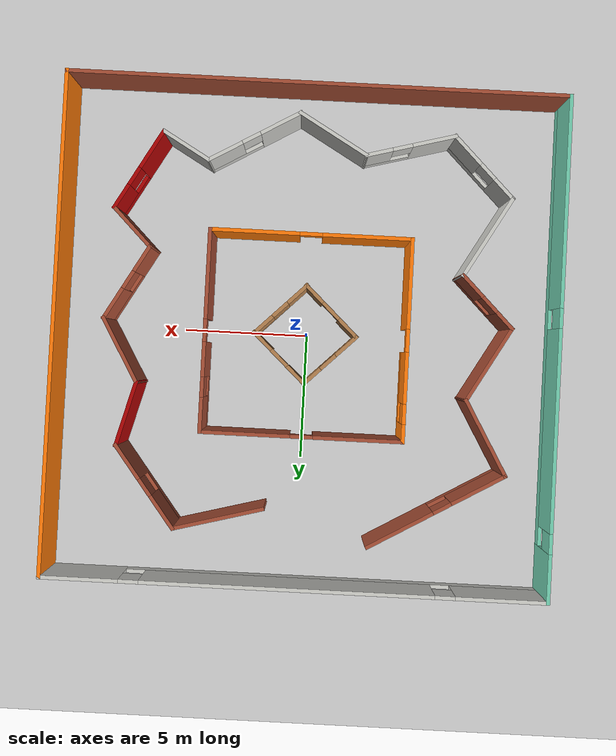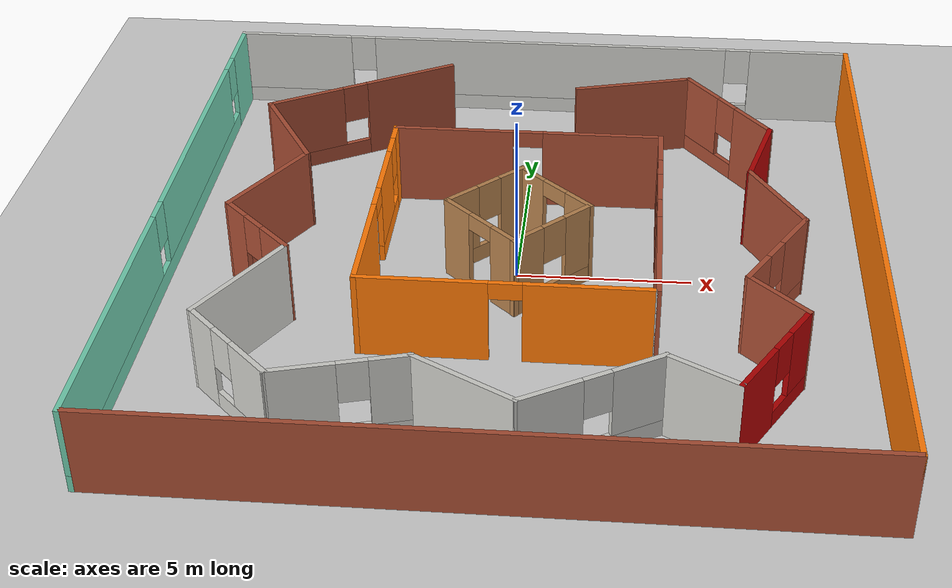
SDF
<sdf version="1.6">
 <world name="default">
  <model name="ground_plane">
   <static>1</static>
   <link name="link">
    <collision name="collision">
     <geometry><plane><normal>0 0 1</normal><size>100 100</size></plane></geometry>
     <surface><friction><ode><mu>100</mu><mu2>50</mu2></ode></friction></surface>
    </collision>
    <visual name="visual">
     <cast_shadows>0</cast_shadows>
     <geometry><plane><normal>0 0 1</normal><size>100 100</size></plane></geometry>
     <material>
      <script><uri>file://media/materials/scripts/gazebo.material</uri><name>Gazebo/Grey</name></script>
     </material>
    </visual>
   </link>
  </model>
  <model name="building">
   <link name="Wall_44">
    <collision name="Wall_44_Collision">
     <geometry><box><size>20.15 0.15 2.5</size></box></geometry>
     <pose>0 0 1.25 0 -0 0</pose>
    </collision>
    <visual name="Wall_44_Visual">
     <pose>0 0 1.25 0 -0 0</pose>
     <geometry><box><size>20.15 0.15 2.5</size></box></geometry>
     <material>
      <script><uri>file://media/materials/scripts/gazebo.material</uri><name>Gazebo/Bricks</name></script>
      <ambient>0.760784 0.662745 0.627451 1</ambient>
     </material>
     <meta><layer>0</layer></meta>
    </visual>
    <pose>0 -10 0 0 -0 0</pose>
   </link>
   <link name="Wall_45">
    <collision name="Wall_45_Collision">
     <geometry><box><size>20.15 0.15 2.5</size></box></geometry>
     <pose>0 0 1.25 0 -0 0</pose>
    </collision>
    <visual name="Wall_45_Visual">
     <pose>0 0 1.25 0 -0 0</pose>
     <geometry><box><size>20.15 0.15 2.5</size></box></geometry>
     <material>
      <script><uri>file://media/materials/scripts/gazebo.material</uri><name>Gazebo/Grey</name></script>
      <ambient>0.996078 0.47451 0.0196078 1</ambient>
     </material>
     <meta><layer>0</layer></meta>
    </visual>
    <pose>10 0 0 0 -0 1.5708</pose>
   </link>
   <link name="Wall_46">
    <pose>0 10 0 0 -0 3.14159</pose>
    <visual name="Wall_46_Visual_0">
     <pose>-8.48027 0 1.25 0 -0 0</pose>
     <geometry><box><size>3.18945 0.15 2.5</size></box></geometry>
     <material>
      <script><uri>file://media/materials/scripts/gazebo.material</uri><name>Gazebo/CeilingTiled</name></script>
      <ambient>0.333333 0 1 1</ambient>
     </material>
     <meta><layer>0</layer></meta>
    </visual>
    <collision name="Wall_46_Collision_0">
     <geometry><box><size>3.18945 0.15 2.5</size></box></geometry>
     <pose>-8.48027 0 1.25 0 -0 0</pose>
    </collision>
    <visual name="Wall_46_Visual_1">
     <pose>1.59473 0 0.25 0 -0 0</pose>
     <geometry><box><size>16.9605 0.15 0.5</size></box></geometry>
     <material>
      <script><uri>file://media/materials/scripts/gazebo.material</uri><name>Gazebo/CeilingTiled</name></script>
      <ambient>0.333333 0 1 1</ambient>
     </material>
     <meta><layer>0</layer></meta>
    </visual>
    <collision name="Wall_46_Collision_1">
     <geometry><box><size>16.9605 0.15 0.5</size></box></geometry>
     <pose>1.59473 0 0.25 0 -0 0</pose>
    </collision>
    <visual name="Wall_46_Visual_2">
     <pose>-0.261101 0 1.5 0 -0 0</pose>
     <geometry><box><size>11.6489 0.15 2</size></box></geometry>
     <material>
      <script><uri>file://media/materials/scripts/gazebo.material</uri><name>Gazebo/CeilingTiled</name></script>
      <ambient>0.333333 0 1 1</ambient>
     </material>
     <meta><layer>0</layer></meta>
    </visual>
    <collision name="Wall_46_Collision_2">
     <geometry><box><size>11.6489 0.15 2</size></box></geometry>
     <pose>-0.261101 0 1.5 0 -0 0</pose>
    </collision>
    <visual name="Wall_46_Visual_3">
     <pose>8.21917 0 1.5 0 -0 0</pose>
     <geometry><box><size>3.71165 0.15 2</size></box></geometry>
     <material>
      <script><uri>file://media/materials/scripts/gazebo.material</uri><name>Gazebo/CeilingTiled</name></script>
      <ambient>0.333333 0 1 1</ambient>
     </material>
     <meta><layer>0</layer></meta>
    </visual>
    <collision name="Wall_46_Collision_3">
     <geometry><box><size>3.71165 0.15 2</size></box></geometry>
     <pose>8.21917 0 1.5 0 -0 0</pose>
    </collision>
    <visual name="Wall_46_Visual_4">
     <pose>-6.48555 0 1.9 0 -0 0</pose>
     <geometry><box><size>0.8 0.15 1.2</size></box></geometry>
     <material>
      <script><uri>file://media/materials/scripts/gazebo.material</uri><name>Gazebo/CeilingTiled</name></script>
      <ambient>0.333333 0 1 1</ambient>
     </material>
     <meta><layer>0</layer></meta>
    </visual>
    <collision name="Wall_46_Collision_4">
     <geometry><box><size>0.8 0.15 1.2</size></box></geometry>
     <pose>-6.48555 0 1.9 0 -0 0</pose>
    </collision>
    <visual name="Wall_46_Visual_5">
     <pose>5.96335 0 1.9 0 -0 0</pose>
     <geometry><box><size>0.8 0.15 1.2</size></box></geometry>
     <material>
      <script><uri>file://media/materials/scripts/gazebo.material</uri><name>Gazebo/CeilingTiled</name></script>
      <ambient>0.333333 0 1 1</ambient>
     </material>
     <meta><layer>0</layer></meta>
    </visual>
    <collision name="Wall_46_Collision_5">
     <geometry><box><size>0.8 0.15 1.2</size></box></geometry>
     <pose>5.96335 0 1.9 0 -0 0</pose>
    </collision>
   </link>
   <link name="Wall_47">
    <pose>-10 0 0 0 0 -1.5708</pose>
    <visual name="Wall_47_Visual_0">
     <pose>-9.08483 0 1.25 0 -0 0</pose>
     <geometry><box><size>1.98033 0.15 2.5</size></box></geometry>
     <material>
      <script><uri>file://media/materials/scripts/gazebo.material</uri><name>Gazebo/Grey</name></script>
      <ambient>0.435294 0.796078 0.67451 1</ambient>
     </material>
     <meta><layer>0</layer></meta>
    </visual>
    <collision name="Wall_47_Collision_0">
     <geometry><box><size>1.98033 0.15 2.5</size></box></geometry>
     <pose>-9.08483 0 1.25 0 -0 0</pose>
    </collision>
    <visual name="Wall_47_Visual_1">
     <pose>0.990168 0 0.25 0 -0 0</pose>
     <geometry><box><size>18.1697 0.15 0.5</size></box></geometry>
     <material>
      <script><uri>file://media/materials/scripts/gazebo.material</uri><name>Gazebo/Grey</name></script>
      <ambient>0.435294 0.796078 0.67451 1</ambient>
     </material>
     <meta><layer>0</layer></meta>
    </visual>
    <collision name="Wall_47_Collision_1">
     <geometry><box><size>18.1697 0.15 0.5</size></box></geometry>
     <pose>0.990168 0 0.25 0 -0 0</pose>
    </collision>
    <visual name="Wall_47_Visual_2">
     <pose>-3.25243 0 1.5 0 -0 0</pose>
     <geometry><box><size>8.08447 0.15 2</size></box></geometry>
     <material>
      <script><uri>file://media/materials/scripts/gazebo.material</uri><name>Gazebo/Grey</name></script>
      <ambient>0.435294 0.796078 0.67451 1</ambient>
     </material>
     <meta><layer>0</layer></meta>
    </visual>
    <collision name="Wall_47_Collision_2">
     <geometry><box><size>8.08447 0.15 2</size></box></geometry>
     <pose>-3.25243 0 1.5 0 -0 0</pose>
    </collision>
    <visual name="Wall_47_Visual_3">
     <pose>5.8324 0 1.5 0 -0 0</pose>
     <geometry><box><size>8.4852 0.15 2</size></box></geometry>
     <material>
      <script><uri>file://media/materials/scripts/gazebo.material</uri><name>Gazebo/Grey</name></script>
      <ambient>0.435294 0.796078 0.67451 1</ambient>
     </material>
     <meta><layer>0</layer></meta>
    </visual>
    <collision name="Wall_47_Collision_3">
     <geometry><box><size>8.4852 0.15 2</size></box></geometry>
     <pose>5.8324 0 1.5 0 -0 0</pose>
    </collision>
    <visual name="Wall_47_Visual_4">
     <pose>-7.69466 0 1.9 0 -0 0</pose>
     <geometry><box><size>0.8 0.15 1.2</size></box></geometry>
     <material>
      <script><uri>file://media/materials/scripts/gazebo.material</uri><name>Gazebo/Grey</name></script>
      <ambient>0.435294 0.796078 0.67451 1</ambient>
     </material>
     <meta><layer>0</layer></meta>
    </visual>
    <collision name="Wall_47_Collision_4">
     <geometry><box><size>0.8 0.15 1.2</size></box></geometry>
     <pose>-7.69466 0 1.9 0 -0 0</pose>
    </collision>
    <visual name="Wall_47_Visual_5">
     <pose>1.1898 0 1.9 0 -0 0</pose>
     <geometry><box><size>0.8 0.15 1.2</size></box></geometry>
     <material>
      <script><uri>file://media/materials/scripts/gazebo.material</uri><name>Gazebo/Grey</name></script>
      <ambient>0.435294 0.796078 0.67451 1</ambient>
     </material>
     <meta><layer>0</layer></meta>
    </visual>
    <collision name="Wall_47_Collision_5">
     <geometry><box><size>0.8 0.15 1.2</size></box></geometry>
     <pose>1.1898 0 1.9 0 -0 0</pose>
    </collision>
   </link>
   <link name="Wall_49">
    <pose>-4 0 0 0 0 -1.5708</pose>
    <visual name="Wall_49_Visual_0">
     <pose>-3.69081 0 1.25 0 -0 0</pose>
     <geometry><box><size>0.768371 0.15 2.5</size></box></geometry>
     <material>
      <script><uri>file://media/materials/scripts/gazebo.material</uri><name>Gazebo/Grey</name></script>
      <ambient>0.996078 0.47451 0.0196078 1</ambient>
     </material>
     <meta><layer>0</layer></meta>
    </visual>
    <collision name="Wall_49_Collision_0">
     <geometry><box><size>0.768371 0.15 2.5</size></box></geometry>
     <pose>-3.69081 0 1.25 0 -0 0</pose>
    </collision>
    <visual name="Wall_49_Visual_1">
     <pose>2.2625 0 1.25 0 -0 0</pose>
     <geometry><box><size>3.625 0.15 2.5</size></box></geometry>
     <material>
      <script><uri>file://media/materials/scripts/gazebo.material</uri><name>Gazebo/Grey</name></script>
      <ambient>0.996078 0.47451 0.0196078 1</ambient>
     </material>
     <meta><layer>0</layer></meta>
    </visual>
    <collision name="Wall_49_Collision_1">
     <geometry><box><size>3.625 0.15 2.5</size></box></geometry>
     <pose>2.2625 0 1.25 0 -0 0</pose>
    </collision>
    <visual name="Wall_49_Visual_2">
     <pose>-1.87831 0 0.25 0 -0 0</pose>
     <geometry><box><size>2.85663 0.15 0.5</size></box></geometry>
     <material>
      <script><uri>file://media/materials/scripts/gazebo.material</uri><name>Gazebo/Grey</name></script>
      <ambient>0.996078 0.47451 0.0196078 1</ambient>
     </material>
     <meta><layer>0</layer></meta>
    </visual>
    <collision name="Wall_49_Collision_2">
     <geometry><box><size>2.85663 0.15 0.5</size></box></geometry>
     <pose>-1.87831 0 0.25 0 -0 0</pose>
    </collision>
    <visual name="Wall_49_Visual_3">
     <pose>-1.47831 0 1.5 0 -0 0</pose>
     <geometry><box><size>2.05663 0.15 2</size></box></geometry>
     <material>
      <script><uri>file://media/materials/scripts/gazebo.material</uri><name>Gazebo/Grey</name></script>
      <ambient>0.996078 0.47451 0.0196078 1</ambient>
     </material>
     <meta><layer>0</layer></meta>
    </visual>
    <collision name="Wall_49_Collision_3">
     <geometry><box><size>2.05663 0.15 2</size></box></geometry>
     <pose>-1.47831 0 1.5 0 -0 0</pose>
    </collision>
    <visual name="Wall_49_Visual_4">
     <pose>-2.90663 0 1.9 0 -0 0</pose>
     <geometry><box><size>0.8 0.15 1.2</size></box></geometry>
     <material>
      <script><uri>file://media/materials/scripts/gazebo.material</uri><name>Gazebo/Grey</name></script>
      <ambient>0.996078 0.47451 0.0196078 1</ambient>
     </material>
     <meta><layer>0</layer></meta>
    </visual>
    <collision name="Wall_49_Collision_4">
     <geometry><box><size>0.8 0.15 1.2</size></box></geometry>
     <pose>-2.90663 0 1.9 0 -0 0</pose>
    </collision>
    <visual name="Wall_49_Visual_5">
     <pose>0 0 2.25 0 -0 0</pose>
     <geometry><box><size>0.9 0.15 0.5</size></box></geometry>
     <material>
      <script><uri>file://media/materials/scripts/gazebo.material</uri><name>Gazebo/Grey</name></script>
      <ambient>0.996078 0.47451 0.0196078 1</ambient>
     </material>
     <meta><layer>0</layer></meta>
    </visual>
    <collision name="Wall_49_Collision_5">
     <geometry><box><size>0.9 0.15 0.5</size></box></geometry>
     <pose>0 0 2.25 0 -0 0</pose>
    </collision>
   </link>
   <link name="Wall_50">
    <pose>0 -4 0 0 -0 0</pose>
    <visual name="Wall_50_Visual_0">
     <pose>-2.2625 0 1.25 0 -0 0</pose>
     <geometry><box><size>3.625 0.15 2.5</size></box></geometry>
     <material>
      <script><uri>file://media/materials/scripts/gazebo.material</uri><name>Gazebo/Grey</name></script>
      <ambient>0.996078 0.47451 0.0196078 1</ambient>
     </material>
     <meta><layer>0</layer></meta>
    </visual>
    <collision name="Wall_50_Collision_0">
     <geometry><box><size>3.625 0.15 2.5</size></box></geometry>
     <pose>-2.2625 0 1.25 0 -0 0</pose>
    </collision>
    <visual name="Wall_50_Visual_1">
     <pose>2.2625 0 1.25 0 -0 0</pose>
     <geometry><box><size>3.625 0.15 2.5</size></box></geometry>
     <material>
      <script><uri>file://media/materials/scripts/gazebo.material</uri><name>Gazebo/Grey</name></script>
      <ambient>0.996078 0.47451 0.0196078 1</ambient>
     </material>
     <meta><layer>0</layer></meta>
    </visual>
    <collision name="Wall_50_Collision_1">
     <geometry><box><size>3.625 0.15 2.5</size></box></geometry>
     <pose>2.2625 0 1.25 0 -0 0</pose>
    </collision>
    <visual name="Wall_50_Visual_2">
     <pose>0 0 2.25 0 -0 0</pose>
     <geometry><box><size>0.9 0.15 0.5</size></box></geometry>
     <material>
      <script><uri>file://media/materials/scripts/gazebo.material</uri><name>Gazebo/Grey</name></script>
      <ambient>0.996078 0.47451 0.0196078 1</ambient>
     </material>
     <meta><layer>0</layer></meta>
    </visual>
    <collision name="Wall_50_Collision_2">
     <geometry><box><size>0.9 0.15 0.5</size></box></geometry>
     <pose>0 0 2.25 0 -0 0</pose>
    </collision>
   </link>
   <link name="Wall_51">
    <collision name="Wall_51_Collision">
     <geometry><box><size>0.15 0.15 2.5</size></box></geometry>
     <pose>0 0 1.25 0 -0 0</pose>
    </collision>
    <visual name="Wall_51_Visual">
     <pose>0 0 1.25 0 -0 0</pose>
     <geometry><box><size>0.15 0.15 2.5</size></box></geometry>
     <material>
      <script><uri>file://media/materials/scripts/gazebo.material</uri><name>Gazebo/CeilingTiled</name></script>
      <ambient>0.435294 0.796078 0.67451 1</ambient>
     </material>
     <meta><layer>0</layer></meta>
    </visual>
    <pose>4 -4 0 0 -0 0</pose>
   </link>
   <link name="Wall_52">
    <pose>4 0 0 0 -0 1.5708</pose>
    <visual name="Wall_52_Visual_0">
     <pose>-2.2608 0 1.25 0 -0 0</pose>
     <geometry><box><size>3.6284 0.15 2.5</size></box></geometry>
     <material>
      <script><uri>file://media/materials/scripts/gazebo.material</uri><name>Gazebo/Bricks</name></script>
      <ambient>1 1 1 1</ambient>
     </material>
     <meta><layer>0</layer></meta>
    </visual>
    <collision name="Wall_52_Collision_0">
     <geometry><box><size>3.6284 0.15 2.5</size></box></geometry>
     <pose>-2.2608 0 1.25 0 -0 0</pose>
    </collision>
    <visual name="Wall_52_Visual_1">
     <pose>1.14751 0 1.25 0 -0 0</pose>
     <geometry><box><size>1.38822 0.15 2.5</size></box></geometry>
     <material>
      <script><uri>file://media/materials/scripts/gazebo.material</uri><name>Gazebo/Bricks</name></script>
      <ambient>1 1 1 1</ambient>
     </material>
     <meta><layer>0</layer></meta>
    </visual>
    <collision name="Wall_52_Collision_1">
     <geometry><box><size>1.38822 0.15 2.5</size></box></geometry>
     <pose>1.14751 0 1.25 0 -0 0</pose>
    </collision>
    <visual name="Wall_52_Visual_2">
     <pose>2.95831 0 0.25 0 -0 0</pose>
     <geometry><box><size>2.23338 0.15 0.5</size></box></geometry>
     <material>
      <script><uri>file://media/materials/scripts/gazebo.material</uri><name>Gazebo/Bricks</name></script>
      <ambient>1 1 1 1</ambient>
     </material>
     <meta><layer>0</layer></meta>
    </visual>
    <collision name="Wall_52_Collision_2">
     <geometry><box><size>2.23338 0.15 0.5</size></box></geometry>
     <pose>2.95831 0 0.25 0 -0 0</pose>
    </collision>
    <visual name="Wall_52_Visual_3">
     <pose>3.35831 0 1.5 0 -0 0</pose>
     <geometry><box><size>1.43338 0.15 2</size></box></geometry>
     <material>
      <script><uri>file://media/materials/scripts/gazebo.material</uri><name>Gazebo/Bricks</name></script>
      <ambient>1 1 1 1</ambient>
     </material>
     <meta><layer>0</layer></meta>
    </visual>
    <collision name="Wall_52_Collision_3">
     <geometry><box><size>1.43338 0.15 2</size></box></geometry>
     <pose>3.35831 0 1.5 0 -0 0</pose>
    </collision>
    <visual name="Wall_52_Visual_4">
     <pose>2.24162 0 1.9 0 -0 0</pose>
     <geometry><box><size>0.8 0.15 1.2</size></box></geometry>
     <material>
      <script><uri>file://media/materials/scripts/gazebo.material</uri><name>Gazebo/Bricks</name></script>
      <ambient>1 1 1 1</ambient>
     </material>
     <meta><layer>0</layer></meta>
    </visual>
    <collision name="Wall_52_Collision_4">
     <geometry><box><size>0.8 0.15 1.2</size></box></geometry>
     <pose>2.24162 0 1.9 0 -0 0</pose>
    </collision>
    <visual name="Wall_52_Visual_5">
     <pose>0.003404 0 2.25 0 -0 0</pose>
     <geometry><box><size>0.9 0.15 0.5</size></box></geometry>
     <material>
      <script><uri>file://media/materials/scripts/gazebo.material</uri><name>Gazebo/Bricks</name></script>
      <ambient>1 1 1 1</ambient>
     </material>
     <meta><layer>0</layer></meta>
    </visual>
    <collision name="Wall_52_Collision_5">
     <geometry><box><size>0.9 0.15 0.5</size></box></geometry>
     <pose>0.003404 0 2.25 0 -0 0</pose>
    </collision>
   </link>
   <link name="Wall_54">
    <pose>0 4 0 0 -0 3.14159</pose>
    <visual name="Wall_54_Visual_0">
     <pose>-2.2625 0 1.25 0 -0 0</pose>
     <geometry><box><size>3.625 0.15 2.5</size></box></geometry>
     <material>
      <script><uri>file://media/materials/scripts/gazebo.material</uri><name>Gazebo/Bricks</name></script>
      <ambient>1 1 1 1</ambient>
     </material>
     <meta><layer>0</layer></meta>
    </visual>
    <collision name="Wall_54_Collision_0">
     <geometry><box><size>3.625 0.15 2.5</size></box></geometry>
     <pose>-2.2625 0 1.25 0 -0 0</pose>
    </collision>
    <visual name="Wall_54_Visual_1">
     <pose>2.2625 0 1.25 0 -0 0</pose>
     <geometry><box><size>3.625 0.15 2.5</size></box></geometry>
     <material>
      <script><uri>file://media/materials/scripts/gazebo.material</uri><name>Gazebo/Bricks</name></script>
      <ambient>1 1 1 1</ambient>
     </material>
     <meta><layer>0</layer></meta>
    </visual>
    <collision name="Wall_54_Collision_1">
     <geometry><box><size>3.625 0.15 2.5</size></box></geometry>
     <pose>2.2625 0 1.25 0 -0 0</pose>
    </collision>
    <visual name="Wall_54_Visual_2">
     <pose>0 0 2.25 0 -0 0</pose>
     <geometry><box><size>0.9 0.15 0.5</size></box></geometry>
     <material>
      <script><uri>file://media/materials/scripts/gazebo.material</uri><name>Gazebo/Bricks</name></script>
      <ambient>1 1 1 1</ambient>
     </material>
     <meta><layer>0</layer></meta>
    </visual>
    <collision name="Wall_54_Collision_2">
     <geometry><box><size>0.9 0.15 0.5</size></box></geometry>
     <pose>0 0 2.25 0 -0 0</pose>
    </collision>
   </link>
   <link name="Wall_58">
    <pose>-0.981304 0.947415 0 0 0 -2.36683</pose>
    <visual name="Wall_58_Visual_0">
     <pose>-0.975073 0 1.25 0 -0 0</pose>
     <geometry><box><size>0.954837 0.15 2.5</size></box></geometry>
     <material>
      <script><uri>file://media/materials/scripts/gazebo.material</uri><name>Gazebo/Wood</name></script>
      <ambient>0.333333 0 1 1</ambient>
     </material>
     <meta><layer>0</layer></meta>
    </visual>
    <collision name="Wall_58_Collision_0">
     <geometry><box><size>0.954837 0.15 2.5</size></box></geometry>
     <pose>-0.975073 0 1.25 0 -0 0</pose>
    </collision>
    <visual name="Wall_58_Visual_1">
     <pose>0.477419 0 0.25 0 -0 0</pose>
     <geometry><box><size>1.95015 0.15 0.5</size></box></geometry>
     <material>
      <script><uri>file://media/materials/scripts/gazebo.material</uri><name>Gazebo/Wood</name></script>
      <ambient>0.333333 0 1 1</ambient>
     </material>
     <meta><layer>0</layer></meta>
    </visual>
    <collision name="Wall_58_Collision_1">
     <geometry><box><size>1.95015 0.15 0.5</size></box></geometry>
     <pose>0.477419 0 0.25 0 -0 0</pose>
    </collision>
    <visual name="Wall_58_Visual_2">
     <pose>0.877419 0 1.5 0 -0 0</pose>
     <geometry><box><size>1.15015 0.15 2</size></box></geometry>
     <material>
      <script><uri>file://media/materials/scripts/gazebo.material</uri><name>Gazebo/Wood</name></script>
      <ambient>0.333333 0 1 1</ambient>
     </material>
     <meta><layer>0</layer></meta>
    </visual>
    <collision name="Wall_58_Collision_2">
     <geometry><box><size>1.15015 0.15 2</size></box></geometry>
     <pose>0.877419 0 1.5 0 -0 0</pose>
    </collision>
    <visual name="Wall_58_Visual_3">
     <pose>-0.097655 0 1.9 0 -0 0</pose>
     <geometry><box><size>0.8 0.15 1.2</size></box></geometry>
     <material>
      <script><uri>file://media/materials/scripts/gazebo.material</uri><name>Gazebo/Wood</name></script>
      <ambient>0.333333 0 1 1</ambient>
     </material>
     <meta><layer>0</layer></meta>
    </visual>
    <collision name="Wall_58_Collision_3">
     <geometry><box><size>0.8 0.15 1.2</size></box></geometry>
     <pose>-0.097655 0 1.9 0 -0 0</pose>
    </collision>
   </link>
   <link name="Wall_59">
    <pose>-0.941632 -0.998316 0 0 0 -0.755492</pose>
    <visual name="Wall_59_Visual_0">
     <pose>-0.952898 0 1.25 0 -0 0</pose>
     <geometry><box><size>1.05767 0.15 2.5</size></box></geometry>
     <material>
      <script><uri>file://media/materials/scripts/gazebo.material</uri><name>Gazebo/Wood</name></script>
      <ambient>0.333333 0 1 1</ambient>
     </material>
     <meta><layer>0</layer></meta>
    </visual>
    <collision name="Wall_59_Collision_0">
     <geometry><box><size>1.05767 0.15 2.5</size></box></geometry>
     <pose>-0.952898 0 1.25 0 -0 0</pose>
    </collision>
    <visual name="Wall_59_Visual_1">
     <pose>0.978835 0 1.25 0 -0 0</pose>
     <geometry><box><size>1.0058 0.15 2.5</size></box></geometry>
     <material>
      <script><uri>file://media/materials/scripts/gazebo.material</uri><name>Gazebo/Wood</name></script>
      <ambient>0.333333 0 1 1</ambient>
     </material>
     <meta><layer>0</layer></meta>
    </visual>
    <collision name="Wall_59_Collision_1">
     <geometry><box><size>1.0058 0.15 2.5</size></box></geometry>
     <pose>0.978835 0 1.25 0 -0 0</pose>
    </collision>
    <visual name="Wall_59_Visual_2">
     <pose>0.025937 0 2.25 0 -0 0</pose>
     <geometry><box><size>0.9 0.15 0.5</size></box></geometry>
     <material>
      <script><uri>file://media/materials/scripts/gazebo.material</uri><name>Gazebo/Wood</name></script>
      <ambient>0.333333 0 1 1</ambient>
     </material>
     <meta><layer>0</layer></meta>
    </visual>
    <collision name="Wall_59_Collision_2">
     <geometry><box><size>0.9 0.15 0.5</size></box></geometry>
     <pose>0.025937 0 2.25 0 -0 0</pose>
    </collision>
   </link>
   <link name="Wall_60">
    <pose>1.04341 -0.990461 0 0 -0 0.779305</pose>
    <visual name="Wall_60_Visual_0">
     <pose>-0.909688 0 1.25 0 -0 0</pose>
     <geometry><box><size>1.09783 0.15 2.5</size></box></geometry>
     <material>
      <script><uri>file://media/materials/scripts/gazebo.material</uri><name>Gazebo/Wood</name></script>
      <ambient>0.333333 0 1 1</ambient>
     </material>
     <meta><layer>0</layer></meta>
    </visual>
    <collision name="Wall_60_Collision_0">
     <geometry><box><size>1.09783 0.15 2.5</size></box></geometry>
     <pose>-0.909688 0 1.25 0 -0 0</pose>
    </collision>
    <visual name="Wall_60_Visual_1">
     <pose>0.548916 0 0.25 0 -0 0</pose>
     <geometry><box><size>1.81938 0.15 0.5</size></box></geometry>
     <material>
      <script><uri>file://media/materials/scripts/gazebo.material</uri><name>Gazebo/Wood</name></script>
      <ambient>0.333333 0 1 1</ambient>
     </material>
     <meta><layer>0</layer></meta>
    </visual>
    <collision name="Wall_60_Collision_1">
     <geometry><box><size>1.81938 0.15 0.5</size></box></geometry>
     <pose>0.548916 0 0.25 0 -0 0</pose>
    </collision>
    <visual name="Wall_60_Visual_2">
     <pose>0.948916 0 1.5 0 -0 0</pose>
     <geometry><box><size>1.01938 0.15 2</size></box></geometry>
     <material>
      <script><uri>file://media/materials/scripts/gazebo.material</uri><name>Gazebo/Wood</name></script>
      <ambient>0.333333 0 1 1</ambient>
     </material>
     <meta><layer>0</layer></meta>
    </visual>
    <collision name="Wall_60_Collision_2">
     <geometry><box><size>1.01938 0.15 2</size></box></geometry>
     <pose>0.948916 0 1.5 0 -0 0</pose>
    </collision>
    <visual name="Wall_60_Visual_3">
     <pose>0.039229 0 1.9 0 -0 0</pose>
     <geometry><box><size>0.8 0.15 1.2</size></box></geometry>
     <material>
      <script><uri>file://media/materials/scripts/gazebo.material</uri><name>Gazebo/Wood</name></script>
      <ambient>0.333333 0 1 1</ambient>
     </material>
     <meta><layer>0</layer></meta>
    </visual>
    <collision name="Wall_60_Collision_3">
     <geometry><box><size>0.8 0.15 1.2</size></box></geometry>
     <pose>0.039229 0 1.9 0 -0 0</pose>
    </collision>
   </link>
   <link name="Wall_61">
    <pose>1.02035 0.946475 0 0 -0 2.38929</pose>
    <visual name="Wall_61_Visual_0">
     <pose>-0.968361 0 1.25 0 -0 0</pose>
     <geometry><box><size>1.03644 0.15 2.5</size></box></geometry>
     <material>
      <script><uri>file://media/materials/scripts/gazebo.material</uri><name>Gazebo/Wood</name></script>
      <ambient>0.333333 0 1 1</ambient>
     </material>
     <meta><layer>0</layer></meta>
    </visual>
    <collision name="Wall_61_Collision_0">
     <geometry><box><size>1.03644 0.15 2.5</size></box></geometry>
     <pose>-0.968361 0 1.25 0 -0 0</pose>
    </collision>
    <visual name="Wall_61_Visual_1">
     <pose>0.968218 0 1.25 0 -0 0</pose>
     <geometry><box><size>1.03672 0.15 2.5</size></box></geometry>
     <material>
      <script><uri>file://media/materials/scripts/gazebo.material</uri><name>Gazebo/Wood</name></script>
      <ambient>0.333333 0 1 1</ambient>
     </material>
     <meta><layer>0</layer></meta>
    </visual>
    <collision name="Wall_61_Collision_1">
     <geometry><box><size>1.03672 0.15 2.5</size></box></geometry>
     <pose>0.968218 0 1.25 0 -0 0</pose>
    </collision>
    <visual name="Wall_61_Visual_2">
     <pose>-0.000142 0 2.25 0 -0 0</pose>
     <geometry><box><size>0.9 0.15 0.5</size></box></geometry>
     <material>
      <script><uri>file://media/materials/scripts/gazebo.material</uri><name>Gazebo/Wood</name></script>
      <ambient>0.333333 0 1 1</ambient>
     </material>
     <meta><layer>0</layer></meta>
    </visual>
    <collision name="Wall_61_Collision_2">
     <geometry><box><size>0.9 0.15 0.5</size></box></geometry>
     <pose>-0.000142 0 2.25 0 -0 0</pose>
    </collision>
   </link>
   <link name="Wall_63">
    <pose>-5.44703 6.66103 0 0 0 -2.61799</pose>
    <visual name="Wall_63_Visual_0">
     <pose>-1.62657 0 1.25 0 -0 0</pose>
     <geometry><box><size>2.99687 0.15 2.5</size></box></geometry>
     <material>
      <script><uri>file://media/materials/scripts/gazebo.material</uri><name>Gazebo/Bricks</name></script>
      <ambient>0.666667 0 0 1</ambient>
     </material>
     <meta><layer>0</layer></meta>
    </visual>
    <collision name="Wall_63_Collision_0">
     <geometry><box><size>2.99687 0.15 2.5</size></box></geometry>
     <pose>-1.62657 0 1.25 0 -0 0</pose>
    </collision>
    <visual name="Wall_63_Visual_1">
     <pose>1.49843 0 0.25 0 -0 0</pose>
     <geometry><box><size>3.25313 0.15 0.5</size></box></geometry>
     <material>
      <script><uri>file://media/materials/scripts/gazebo.material</uri><name>Gazebo/Bricks</name></script>
      <ambient>0.666667 0 0 1</ambient>
     </material>
     <meta><layer>0</layer></meta>
    </visual>
    <collision name="Wall_63_Collision_1">
     <geometry><box><size>3.25313 0.15 0.5</size></box></geometry>
     <pose>1.49843 0 0.25 0 -0 0</pose>
    </collision>
    <visual name="Wall_63_Visual_2">
     <pose>1.89843 0 1.5 0 -0 0</pose>
     <geometry><box><size>2.45314 0.15 2</size></box></geometry>
     <material>
      <script><uri>file://media/materials/scripts/gazebo.material</uri><name>Gazebo/Bricks</name></script>
      <ambient>0.666667 0 0 1</ambient>
     </material>
     <meta><layer>0</layer></meta>
    </visual>
    <collision name="Wall_63_Collision_2">
     <geometry><box><size>2.45314 0.15 2</size></box></geometry>
     <pose>1.89843 0 1.5 0 -0 0</pose>
    </collision>
    <visual name="Wall_63_Visual_3">
     <pose>0.271865 0 1.9 0 -0 0</pose>
     <geometry><box><size>0.8 0.15 1.2</size></box></geometry>
     <material>
      <script><uri>file://media/materials/scripts/gazebo.material</uri><name>Gazebo/Bricks</name></script>
      <ambient>0.666667 0 0 1</ambient>
     </material>
     <meta><layer>0</layer></meta>
    </visual>
    <collision name="Wall_63_Collision_3">
     <geometry><box><size>0.8 0.15 1.2</size></box></geometry>
     <pose>0.271865 0 1.9 0 -0 0</pose>
    </collision>
   </link>
   <link name="Wall_64">
    <collision name="Wall_64_Collision">
     <geometry><box><size>3.5 0.15 2.5</size></box></geometry>
     <pose>0 0 1.25 0 -0 0</pose>
    </collision>
    <visual name="Wall_64_Visual">
     <pose>0 0 1.25 0 -0 0</pose>
     <geometry><box><size>3.5 0.15 2.5</size></box></geometry>
     <material>
      <script><uri>file://media/materials/scripts/gazebo.material</uri><name>Gazebo/Bricks</name></script>
      <ambient>0.666667 0 0 1</ambient>
     </material>
     <meta><layer>0</layer></meta>
    </visual>
    <pose>-7.25091 3.68544 0 0 0 -1.0472</pose>
   </link>
   <link name="Wall_65">
    <collision name="Wall_65_Collision">
     <geometry><box><size>3.5 0.15 2.5</size></box></geometry>
     <pose>0 0 1.25 0 -0 0</pose>
    </collision>
    <visual name="Wall_65_Visual">
     <pose>0 0 1.25 0 -0 0</pose>
     <geometry><box><size>3.5 0.15 2.5</size></box></geometry>
     <material>
      <script><uri>file://media/materials/scripts/gazebo.material</uri><name>Gazebo/Bricks</name></script>
      <ambient>0.666667 0 0 1</ambient>
     </material>
     <meta><layer>0</layer></meta>
    </visual>
    <pose>-7.25091 0.78425 0 0 0 -2.0944</pose>
   </link>
   <link name="Wall_66">
    <pose>-7.08078 -1.67397 0 0 0 -0.785398</pose>
    <visual name="Wall_66_Visual_0">
     <pose>-1.01765 0 1.25 0 -0 0</pose>
     <geometry><box><size>0.964702 0.15 2.5</size></box></geometry>
     <material>
      <script><uri>file://media/materials/scripts/gazebo.material</uri><name>Gazebo/Bricks</name></script>
      <ambient>0.666667 0 0 1</ambient>
     </material>
     <meta><layer>0</layer></meta>
    </visual>
    <collision name="Wall_66_Collision_0">
     <geometry><box><size>0.964702 0.15 2.5</size></box></geometry>
     <pose>-1.01765 0 1.25 0 -0 0</pose>
    </collision>
    <visual name="Wall_66_Visual_1">
     <pose>0.482351 0 0.25 0 -0 0</pose>
     <geometry><box><size>2.0353 0.15 0.5</size></box></geometry>
     <material>
      <script><uri>file://media/materials/scripts/gazebo.material</uri><name>Gazebo/Bricks</name></script>
      <ambient>0.666667 0 0 1</ambient>
     </material>
     <meta><layer>0</layer></meta>
    </visual>
    <collision name="Wall_66_Collision_1">
     <geometry><box><size>2.0353 0.15 0.5</size></box></geometry>
     <pose>0.482351 0 0.25 0 -0 0</pose>
    </collision>
    <visual name="Wall_66_Visual_2">
     <pose>0.882351 0 1.5 0 -0 0</pose>
     <geometry><box><size>1.2353 0.15 2</size></box></geometry>
     <material>
      <script><uri>file://media/materials/scripts/gazebo.material</uri><name>Gazebo/Bricks</name></script>
      <ambient>0.666667 0 0 1</ambient>
     </material>
     <meta><layer>0</layer></meta>
    </visual>
    <collision name="Wall_66_Collision_2">
     <geometry><box><size>1.2353 0.15 2</size></box></geometry>
     <pose>0.882351 0 1.5 0 -0 0</pose>
    </collision>
    <visual name="Wall_66_Visual_3">
     <pose>-0.135298 0 1.9 0 -0 0</pose>
     <geometry><box><size>0.8 0.15 1.2</size></box></geometry>
     <material>
      <script><uri>file://media/materials/scripts/gazebo.material</uri><name>Gazebo/Bricks</name></script>
      <ambient>0.666667 0 0 1</ambient>
     </material>
     <meta><layer>0</layer></meta>
    </visual>
    <collision name="Wall_66_Collision_3">
     <geometry><box><size>0.8 0.15 1.2</size></box></geometry>
     <pose>-0.135298 0 1.9 0 -0 0</pose>
    </collision>
   </link>
   <link name="Wall_67">
    <collision name="Wall_67_Collision">
     <geometry><box><size>3.75 0.15 2.5</size></box></geometry>
     <pose>0 0 1.25 0 -0 0</pose>
    </collision>
    <visual name="Wall_67_Visual">
     <pose>0 0 1.25 0 -0 0</pose>
     <geometry><box><size>3.75 0.15 2.5</size></box></geometry>
     <material>
      <script><uri>file://media/materials/scripts/gazebo.material</uri><name>Gazebo/CeilingTiled</name></script>
      <ambient>0.666667 0 0 1</ambient>
     </material>
     <meta><layer>0</layer></meta>
    </visual>
    <pose>-6.97315 -4.24044 0 0 0 -2.0944</pose>
   </link>
   <link name="Wall_68">
    <pose>-6.68875 -6.98369 0 0 0 -0.785398</pose>
    <visual name="Wall_68_Visual_0">
     <pose>-1.18582 0 1.25 0 -0 0</pose>
     <geometry><box><size>1.12835 0.15 2.5</size></box></geometry>
     <material>
      <script><uri>file://media/materials/scripts/gazebo.material</uri><name>Gazebo/CeilingTiled</name></script>
      <ambient>0.666667 0 0 1</ambient>
     </material>
     <meta><layer>0</layer></meta>
    </visual>
    <collision name="Wall_68_Collision_0">
     <geometry><box><size>1.12835 0.15 2.5</size></box></geometry>
     <pose>-1.18582 0 1.25 0 -0 0</pose>
    </collision>
    <visual name="Wall_68_Visual_1">
     <pose>0.564176 0 0.25 0 -0 0</pose>
     <geometry><box><size>2.37165 0.15 0.5</size></box></geometry>
     <material>
      <script><uri>file://media/materials/scripts/gazebo.material</uri><name>Gazebo/CeilingTiled</name></script>
      <ambient>0.666667 0 0 1</ambient>
     </material>
     <meta><layer>0</layer></meta>
    </visual>
    <collision name="Wall_68_Collision_1">
     <geometry><box><size>2.37165 0.15 0.5</size></box></geometry>
     <pose>0.564176 0 0.25 0 -0 0</pose>
    </collision>
    <visual name="Wall_68_Visual_2">
     <pose>0.964176 0 1.5 0 -0 0</pose>
     <geometry><box><size>1.57165 0.15 2</size></box></geometry>
     <material>
      <script><uri>file://media/materials/scripts/gazebo.material</uri><name>Gazebo/CeilingTiled</name></script>
      <ambient>0.666667 0 0 1</ambient>
     </material>
     <meta><layer>0</layer></meta>
    </visual>
    <collision name="Wall_68_Collision_2">
     <geometry><box><size>1.57165 0.15 2</size></box></geometry>
     <pose>0.964176 0 1.5 0 -0 0</pose>
    </collision>
    <visual name="Wall_68_Visual_3">
     <pose>-0.221648 0 1.9 0 -0 0</pose>
     <geometry><box><size>0.8 0.15 1.2</size></box></geometry>
     <material>
      <script><uri>file://media/materials/scripts/gazebo.material</uri><name>Gazebo/CeilingTiled</name></script>
      <ambient>0.666667 0 0 1</ambient>
     </material>
     <meta><layer>0</layer></meta>
    </visual>
    <collision name="Wall_68_Collision_3">
     <geometry><box><size>0.8 0.15 1.2</size></box></geometry>
     <pose>-0.221648 0 1.9 0 -0 0</pose>
    </collision>
   </link>
   <link name="Wall_69">
    <pose>-3.76568 -7.70222 0 0 -0 0.261799</pose>
    <visual name="Wall_69_Visual_0">
     <pose>-0.967432 0 1.25 0 -0 0</pose>
     <geometry><box><size>1.81514 0.15 2.5</size></box></geometry>
     <material>
      <script><uri>file://media/materials/scripts/gazebo.material</uri><name>Gazebo/CeilingTiled</name></script>
      <ambient>0.666667 0 0 1</ambient>
     </material>
     <meta><layer>0</layer></meta>
    </visual>
    <collision name="Wall_69_Collision_0">
     <geometry><box><size>1.81514 0.15 2.5</size></box></geometry>
     <pose>-0.967432 0 1.25 0 -0 0</pose>
    </collision>
    <visual name="Wall_69_Visual_1">
     <pose>0.907568 0 0.25 0 -0 0</pose>
     <geometry><box><size>1.93486 0.15 0.5</size></box></geometry>
     <material>
      <script><uri>file://media/materials/scripts/gazebo.material</uri><name>Gazebo/CeilingTiled</name></script>
      <ambient>0.666667 0 0 1</ambient>
     </material>
     <meta><layer>0</layer></meta>
    </visual>
    <collision name="Wall_69_Collision_1">
     <geometry><box><size>1.93486 0.15 0.5</size></box></geometry>
     <pose>0.907568 0 0.25 0 -0 0</pose>
    </collision>
    <visual name="Wall_69_Visual_2">
     <pose>1.30757 0 1.5 0 -0 0</pose>
     <geometry><box><size>1.13486 0.15 2</size></box></geometry>
     <material>
      <script><uri>file://media/materials/scripts/gazebo.material</uri><name>Gazebo/CeilingTiled</name></script>
      <ambient>0.666667 0 0 1</ambient>
     </material>
     <meta><layer>0</layer></meta>
    </visual>
    <collision name="Wall_69_Collision_2">
     <geometry><box><size>1.13486 0.15 2</size></box></geometry>
     <pose>1.30757 0 1.5 0 -0 0</pose>
    </collision>
    <visual name="Wall_69_Visual_3">
     <pose>0.340137 0 1.9 0 -0 0</pose>
     <geometry><box><size>0.8 0.15 1.2</size></box></geometry>
     <material>
      <script><uri>file://media/materials/scripts/gazebo.material</uri><name>Gazebo/CeilingTiled</name></script>
      <ambient>0.666667 0 0 1</ambient>
     </material>
     <meta><layer>0</layer></meta>
    </visual>
    <collision name="Wall_69_Collision_3">
     <geometry><box><size>0.8 0.15 1.2</size></box></geometry>
     <pose>0.340137 0 1.9 0 -0 0</pose>
    </collision>
   </link>
   <link name="Wall_70">
    <collision name="Wall_70_Collision">
     <geometry><box><size>3.25 0.15 2.5</size></box></geometry>
     <pose>0 0 1.25 0 -0 0</pose>
    </collision>
    <visual name="Wall_70_Visual">
     <pose>0 0 1.25 0 -0 0</pose>
     <geometry><box><size>3.25 0.15 2.5</size></box></geometry>
     <material>
      <script><uri>file://media/materials/scripts/gazebo.material</uri><name>Gazebo/CeilingTiled</name></script>
      <ambient>0.666667 0 0 1</ambient>
     </material>
     <meta><layer>0</layer></meta>
    </visual>
    <pose>-0.684672 -8.01135 0 0 0 -0.523599</pose>
   </link>
   <link name="Wall_71">
    <pose>2.43302 -7.76135 0 0 -0 0.523599</pose>
    <visual name="Wall_71_Visual_0">
     <pose>-1.19249 0 1.25 0 -0 0</pose>
     <geometry><box><size>1.86503 0.15 2.5</size></box></geometry>
     <material>
      <script><uri>file://media/materials/scripts/gazebo.material</uri><name>Gazebo/CeilingTiled</name></script>
      <ambient>0.666667 0 0 1</ambient>
     </material>
     <meta><layer>0</layer></meta>
    </visual>
    <collision name="Wall_71_Collision_0">
     <geometry><box><size>1.86503 0.15 2.5</size></box></geometry>
     <pose>-1.19249 0 1.25 0 -0 0</pose>
    </collision>
    <visual name="Wall_71_Visual_1">
     <pose>0.932513 0 0.25 0 -0 0</pose>
     <geometry><box><size>2.38497 0.15 0.5</size></box></geometry>
     <material>
      <script><uri>file://media/materials/scripts/gazebo.material</uri><name>Gazebo/CeilingTiled</name></script>
      <ambient>0.666667 0 0 1</ambient>
     </material>
     <meta><layer>0</layer></meta>
    </visual>
    <collision name="Wall_71_Collision_1">
     <geometry><box><size>2.38497 0.15 0.5</size></box></geometry>
     <pose>0.932513 0 0.25 0 -0 0</pose>
    </collision>
    <visual name="Wall_71_Visual_2">
     <pose>1.33251 0 1.5 0 -0 0</pose>
     <geometry><box><size>1.58497 0.15 2</size></box></geometry>
     <material>
      <script><uri>file://media/materials/scripts/gazebo.material</uri><name>Gazebo/CeilingTiled</name></script>
      <ambient>0.666667 0 0 1</ambient>
     </material>
     <meta><layer>0</layer></meta>
    </visual>
    <collision name="Wall_71_Collision_2">
     <geometry><box><size>1.58497 0.15 2</size></box></geometry>
     <pose>1.33251 0 1.5 0 -0 0</pose>
    </collision>
    <visual name="Wall_71_Visual_3">
     <pose>0.140026 0 1.9 0 -0 0</pose>
     <geometry><box><size>0.8 0.15 1.2</size></box></geometry>
     <material>
      <script><uri>file://media/materials/scripts/gazebo.material</uri><name>Gazebo/CeilingTiled</name></script>
      <ambient>0.666667 0 0 1</ambient>
     </material>
     <meta><layer>0</layer></meta>
    </visual>
    <collision name="Wall_71_Collision_3">
     <geometry><box><size>0.8 0.15 1.2</size></box></geometry>
     <pose>0.140026 0 1.9 0 -0 0</pose>
    </collision>
   </link>
   <link name="Wall_72">
    <collision name="Wall_72_Collision">
     <geometry><box><size>2.25 0.15 2.5</size></box></geometry>
     <pose>0 0 1.25 0 -0 0</pose>
    </collision>
    <visual name="Wall_72_Visual">
     <pose>0 0 1.25 0 -0 0</pose>
     <geometry><box><size>2.25 0.15 2.5</size></box></geometry>
     <material>
      <script><uri>file://media/materials/scripts/gazebo.material</uri><name>Gazebo/CeilingTiled</name></script>
      <ambient>0.666667 0 0 1</ambient>
     </material>
     <meta><layer>0</layer></meta>
    </visual>
    <pose>5.1177 -7.26135 0 0 0 -0.523599</pose>
   </link>
   <link name="Wall_73">
    <pose>6.92703 -6.2275 0 0 -0 1.0472</pose>
    <visual name="Wall_73_Visual_0">
     <pose>-0.970925 0 1.25 0 -0 0</pose>
     <geometry><box><size>1.80815 0.15 2.5</size></box></geometry>
     <material>
      <script><uri>file://media/materials/scripts/gazebo.material</uri><name>Gazebo/Grey</name></script>
      <ambient>0.666667 0 0 1</ambient>
     </material>
     <meta><layer>0</layer></meta>
    </visual>
    <collision name="Wall_73_Collision_0">
     <geometry><box><size>1.80815 0.15 2.5</size></box></geometry>
     <pose>-0.970925 0 1.25 0 -0 0</pose>
    </collision>
    <visual name="Wall_73_Visual_1">
     <pose>0.904075 0 0.25 0 -0 0</pose>
     <geometry><box><size>1.94185 0.15 0.5</size></box></geometry>
     <material>
      <script><uri>file://media/materials/scripts/gazebo.material</uri><name>Gazebo/Grey</name></script>
      <ambient>0.666667 0 0 1</ambient>
     </material>
     <meta><layer>0</layer></meta>
    </visual>
    <collision name="Wall_73_Collision_1">
     <geometry><box><size>1.94185 0.15 0.5</size></box></geometry>
     <pose>0.904075 0 0.25 0 -0 0</pose>
    </collision>
    <visual name="Wall_73_Visual_2">
     <pose>1.30408 0 1.5 0 -0 0</pose>
     <geometry><box><size>1.14185 0.15 2</size></box></geometry>
     <material>
      <script><uri>file://media/materials/scripts/gazebo.material</uri><name>Gazebo/Grey</name></script>
      <ambient>0.666667 0 0 1</ambient>
     </material>
     <meta><layer>0</layer></meta>
    </visual>
    <collision name="Wall_73_Collision_2">
     <geometry><box><size>1.14185 0.15 2</size></box></geometry>
     <pose>1.30408 0 1.5 0 -0 0</pose>
    </collision>
    <visual name="Wall_73_Visual_3">
     <pose>0.33315 0 1.9 0 -0 0</pose>
     <geometry><box><size>0.8 0.15 1.2</size></box></geometry>
     <material>
      <script><uri>file://media/materials/scripts/gazebo.material</uri><name>Gazebo/Grey</name></script>
      <ambient>0.666667 0 0 1</ambient>
     </material>
     <meta><layer>0</layer></meta>
    </visual>
    <collision name="Wall_73_Collision_3">
     <geometry><box><size>0.8 0.15 1.2</size></box></geometry>
     <pose>0.33315 0 1.9 0 -0 0</pose>
    </collision>
   </link>
   <link name="Wall_74">
    <collision name="Wall_74_Collision">
     <geometry><box><size>2.25 0.15 2.5</size></box></geometry>
     <pose>0 0 1.25 0 -0 0</pose>
    </collision>
    <visual name="Wall_74_Visual">
     <pose>0 0 1.25 0 -0 0</pose>
     <geometry><box><size>2.25 0.15 2.5</size></box></geometry>
     <material>
      <script><uri>file://media/materials/scripts/gazebo.material</uri><name>Gazebo/Bricks</name></script>
      <ambient>0.666667 0 0 1</ambient>
     </material>
     <meta><layer>0</layer></meta>
    </visual>
    <pose>7.08456 -3.92619 0 0 -0 2.35619</pose>
   </link>
   <link name="Wall_75">
    <pose>7.1796 -1.73314 0 0 -0 1.0472</pose>
    <visual name="Wall_75_Visual_0">
     <pose>-1.13554 0 1.25 0 -0 0</pose>
     <geometry><box><size>1.22893 0.15 2.5</size></box></geometry>
     <material>
      <script><uri>file://media/materials/scripts/gazebo.material</uri><name>Gazebo/Bricks</name></script>
      <ambient>0.666667 0 0 1</ambient>
     </material>
     <meta><layer>0</layer></meta>
    </visual>
    <collision name="Wall_75_Collision_0">
     <geometry><box><size>1.22893 0.15 2.5</size></box></geometry>
     <pose>-1.13554 0 1.25 0 -0 0</pose>
    </collision>
    <visual name="Wall_75_Visual_1">
     <pose>0.614464 0 0.25 0 -0 0</pose>
     <geometry><box><size>2.27107 0.15 0.5</size></box></geometry>
     <material>
      <script><uri>file://media/materials/scripts/gazebo.material</uri><name>Gazebo/Bricks</name></script>
      <ambient>0.666667 0 0 1</ambient>
     </material>
     <meta><layer>0</layer></meta>
    </visual>
    <collision name="Wall_75_Collision_1">
     <geometry><box><size>2.27107 0.15 0.5</size></box></geometry>
     <pose>0.614464 0 0.25 0 -0 0</pose>
    </collision>
    <visual name="Wall_75_Visual_2">
     <pose>1.01446 0 1.5 0 -0 0</pose>
     <geometry><box><size>1.47107 0.15 2</size></box></geometry>
     <material>
      <script><uri>file://media/materials/scripts/gazebo.material</uri><name>Gazebo/Bricks</name></script>
      <ambient>0.666667 0 0 1</ambient>
     </material>
     <meta><layer>0</layer></meta>
    </visual>
    <collision name="Wall_75_Collision_2">
     <geometry><box><size>1.47107 0.15 2</size></box></geometry>
     <pose>1.01446 0 1.5 0 -0 0</pose>
    </collision>
    <visual name="Wall_75_Visual_3">
     <pose>-0.121073 0 1.9 0 -0 0</pose>
     <geometry><box><size>0.8 0.15 1.2</size></box></geometry>
     <material>
      <script><uri>file://media/materials/scripts/gazebo.material</uri><name>Gazebo/Bricks</name></script>
      <ambient>0.666667 0 0 1</ambient>
     </material>
     <meta><layer>0</layer></meta>
    </visual>
    <collision name="Wall_75_Collision_3">
     <geometry><box><size>0.8 0.15 1.2</size></box></geometry>
     <pose>-0.121073 0 1.9 0 -0 0</pose>
    </collision>
   </link>
   <link name="Wall_76">
    <collision name="Wall_76_Collision">
     <geometry><box><size>3 0.15 2.5</size></box></geometry>
     <pose>0 0 1.25 0 -0 0</pose>
    </collision>
    <visual name="Wall_76_Visual">
     <pose>0 0 1.25 0 -0 0</pose>
     <geometry><box><size>3 0.15 2.5</size></box></geometry>
     <material>
      <script><uri>file://media/materials/scripts/gazebo.material</uri><name>Gazebo/Bricks</name></script>
      <ambient>0.666667 0 0 1</ambient>
     </material>
     <meta><layer>0</layer></meta>
    </visual>
    <pose>7.3046 0.951539 0 0 -0 2.0944</pose>
   </link>
   <link name="Wall_77">
    <collision name="Wall_77_Collision">
     <geometry><box><size>2.75 0.15 2.5</size></box></geometry>
     <pose>0 0 1.25 0 -0 0</pose>
    </collision>
    <visual name="Wall_77_Visual">
     <pose>0 0 1.25 0 -0 0</pose>
     <geometry><box><size>2.75 0.15 2.5</size></box></geometry>
     <material>
      <script><uri>file://media/materials/scripts/gazebo.material</uri><name>Gazebo/Grey</name></script>
      <ambient>0.666667 0 0 1</ambient>
     </material>
     <meta><layer>0</layer></meta>
    </visual>
    <pose>6.92856 3.44133 0 0 -0 1.309</pose>
   </link>
   <link name="Wall_78">
    <pose>6.06729 6.26738 0 0 -0 2.22239</pose>
    <visual name="Wall_78_Visual_0">
     <pose>-1.20578 0 1.25 0 -0 0</pose>
     <geometry><box><size>1.68841 0.15 2.5</size></box></geometry>
     <material>
      <script><uri>file://media/materials/scripts/gazebo.material</uri><name>Gazebo/Bricks</name></script>
      <ambient>0.666667 0 0 1</ambient>
     </material>
     <meta><layer>0</layer></meta>
    </visual>
    <collision name="Wall_78_Collision_0">
     <geometry><box><size>1.68841 0.15 2.5</size></box></geometry>
     <pose>-1.20578 0 1.25 0 -0 0</pose>
    </collision>
    <visual name="Wall_78_Visual_1">
     <pose>0.844205 0 0.25 0 -0 0</pose>
     <geometry><box><size>2.41156 0.15 0.5</size></box></geometry>
     <material>
      <script><uri>file://media/materials/scripts/gazebo.material</uri><name>Gazebo/Bricks</name></script>
      <ambient>0.666667 0 0 1</ambient>
     </material>
     <meta><layer>0</layer></meta>
    </visual>
    <collision name="Wall_78_Collision_1">
     <geometry><box><size>2.41156 0.15 0.5</size></box></geometry>
     <pose>0.844205 0 0.25 0 -0 0</pose>
    </collision>
    <visual name="Wall_78_Visual_2">
     <pose>1.24421 0 1.5 0 -0 0</pose>
     <geometry><box><size>1.61156 0.15 2</size></box></geometry>
     <material>
      <script><uri>file://media/materials/scripts/gazebo.material</uri><name>Gazebo/Bricks</name></script>
      <ambient>0.666667 0 0 1</ambient>
     </material>
     <meta><layer>0</layer></meta>
    </visual>
    <collision name="Wall_78_Collision_2">
     <geometry><box><size>1.61156 0.15 2</size></box></geometry>
     <pose>1.24421 0 1.5 0 -0 0</pose>
    </collision>
    <visual name="Wall_78_Visual_3">
     <pose>0.038423 0 1.9 0 -0 0</pose>
     <geometry><box><size>0.8 0.15 1.2</size></box></geometry>
     <material>
      <script><uri>file://media/materials/scripts/gazebo.material</uri><name>Gazebo/Bricks</name></script>
      <ambient>0.666667 0 0 1</ambient>
     </material>
     <meta><layer>0</layer></meta>
    </visual>
    <collision name="Wall_78_Collision_3">
     <geometry><box><size>0.8 0.15 1.2</size></box></geometry>
     <pose>0.038423 0 1.9 0 -0 0</pose>
    </collision>
   </link>
   <link name="Wall_79">
    <collision name="Wall_79_Collision">
     <geometry><box><size>3.75 0.15 2.5</size></box></geometry>
     <pose>0 0 1.25 0 -0 0</pose>
    </collision>
    <visual name="Wall_79_Visual">
     <pose>0 0 1.25 0 -0 0</pose>
     <geometry><box><size>3.75 0.15 2.5</size></box></geometry>
     <material>
      <script><uri>file://media/materials/scripts/gazebo.material</uri><name>Gazebo/Bricks</name></script>
      <ambient>0.666667 0 0 1</ambient>
     </material>
     <meta><layer>0</layer></meta>
    </visual>
    <pose>3.11568 7.37186 0 0 0 -2.87979</pose>
   </link>
   <static>1</static>
  </model>
 </world>
</sdf>
